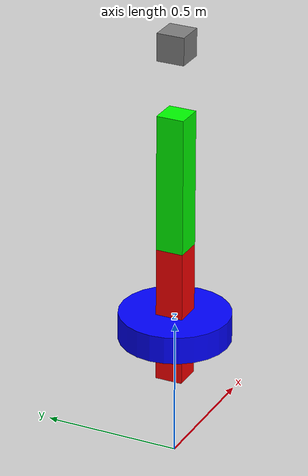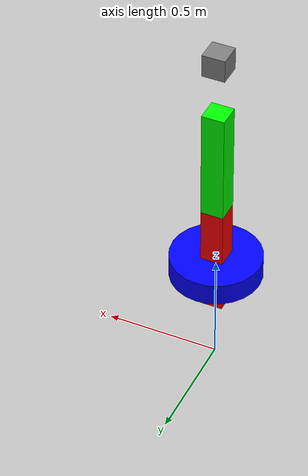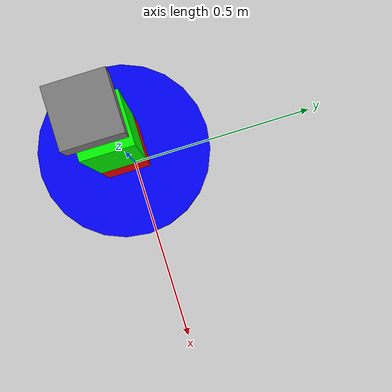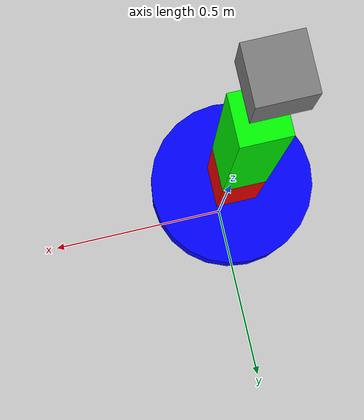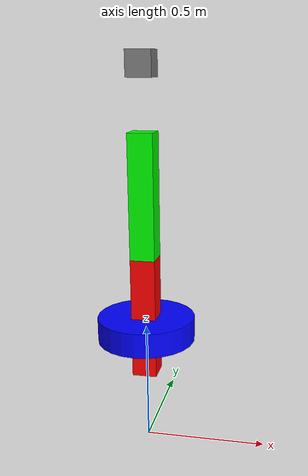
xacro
<robot name="simple_arm" xmlns:xacro="http://ros.org/wiki/xacro">
  <link name="world"/>
  <joint name="base_to_world" type="fixed">
    <parent link="world"/>
    <child link="base_link"/>
    <origin xyz="0 0 0.5" rpy="0 0 0"/>
  </joint>
  <!-- Links -->
  <link name="base_link">
    <visual>
      <geometry>
        <cylinder length="0.1" radius="0.2"/>
      </geometry>
      <material name="blue">
        <color rgba="0 0 1 1"/>
      </material>
    </visual>
    <collision>
      <geometry>
        <cylinder length="0.1" radius="0.2"/>
      </geometry>
    </collision>
    <inertial>
      <mass value="1.0"/>
      <inertia ixx="0.01" ixy="0.0" ixz="0.0" iyy="0.01" iyz="0.0" izz="0.01"/>
    </inertial>
  </link>

  <link name="upper_arm">
    <visual>
      <geometry>
        <box size="0.1 0.1 0.5"/>
      </geometry>
      <material name="red">
        <color rgba="1 0 0 1"/>
      </material>
    </visual>
    <collision>
      <geometry>
        <box size="0.1 0.1 0.5"/>
      </geometry>
    </collision>
    <inertial>
      <mass value="0.5"/>
      <inertia ixx="0.005" ixy="0.0" ixz="0.0" iyy="0.005" iyz="0.0" izz="0.005"/>
    </inertial>
  </link>

  <link name="forearm">
    <visual>
      <geometry>
        <box size="0.1 0.1 0.5"/>
      </geometry>
      <material name="green">
        <color rgba="0 1 0 1"/>
      </material>
    </visual>
    <collision>
      <geometry>
        <box size="0.1 0.1 0.5"/>
      </geometry>
    </collision>
    <inertial>
      <mass value="0.5"/>
      <inertia ixx="0.005" ixy="0.0" ixz="0.0" iyy="0.005" iyz="0.0" izz="0.005"/>
    </inertial>
  </link>

  <link name="gripper">
    <visual>
      <geometry>
        <box size="0.1 0.1 0.1"/>
      </geometry>
      <material name="gray">
        <color rgba="0.5 0.5 0.5 1"/>
      </material>
    </visual>
    <collision>
      <geometry>
        <box size="0.1 0.1 0.1"/>
      </geometry>
    </collision>
    <inertial>
      <mass value="0.2"/>
      <inertia ixx="0.001" ixy="0.0" ixz="0.0" iyy="0.001" iyz="0.0" izz="0.001"/>
    </inertial>
  </link>

  <!-- Joints -->
  <joint name="shoulder_joint" type="revolute">
    <parent link="base_link"/>
    <child link="upper_arm"/>
    <origin xyz="0 0 0.05" rpy="0 0 0"/>
    <axis xyz="0 0 1"/>
    <limit lower="-3.14" upper="3.14" effort="10" velocity="1"/>
  </joint>

  <joint name="elbow_joint" type="revolute">
    <parent link="upper_arm"/>
    <child link="forearm"/>
    <origin xyz="0 0 0.5" rpy="0 0 0"/>
    <axis xyz="0 1 0"/>
    <limit lower="-1.57" upper="1.57" effort="10" velocity="1"/>
  </joint>

  <joint name="gripper_joint" type="revolute">
    <parent link="forearm"/>
    <child link="gripper"/>
    <origin xyz="0 0 0.5" rpy="0 0 0"/>
    <axis xyz="1 0 0"/>
    <limit lower="-0.5" upper="0.5" effort="5" velocity="0.5"/>
  </joint>

  <!-- ROS2 Control -->
  <ros2_control name="SimpleArmSystem" type="system">
    <hardware>
      <plugin>ign_ros2_control/IgnitionSystem</plugin>
    </hardware>
    <joint name="shoulder_joint">
      <command_interface name="position"/>
      <state_interface name="position"/>
      <state_interface name="velocity"/>
    </joint>
    <joint name="elbow_joint">
      <command_interface name="position"/>
      <state_interface name="position"/>
      <state_interface name="velocity"/>
    </joint>
    <joint name="gripper_joint">
      <command_interface name="position"/>
      <state_interface name="position"/>
      <state_interface name="velocity"/>
    </joint>
  </ros2_control>

  <!-- Gazebo Plugin -->
  <gazebo>
    <plugin
      filename="libign_ros2_control-system.so"
      name="ign_ros2_control::IgnitionROS2ControlPlugin">
      <!-- tell it where to find your robot_description -->
      <robot_param>robot_description</robot_param>
      <robot_param_node>robot_state_publisher</robot_param_node>

      <!-- make sure this path actually points at your YAML! -->
      <parameters>$(find simple_arm_description)/config/controllers.yaml</parameters>

      <!-- this will be the ROS2 node name under which the controller_manager spins up -->
      <controller_manager_name>controller_manager</controller_manager_name>
    </plugin>
  </gazebo>
</robot>
